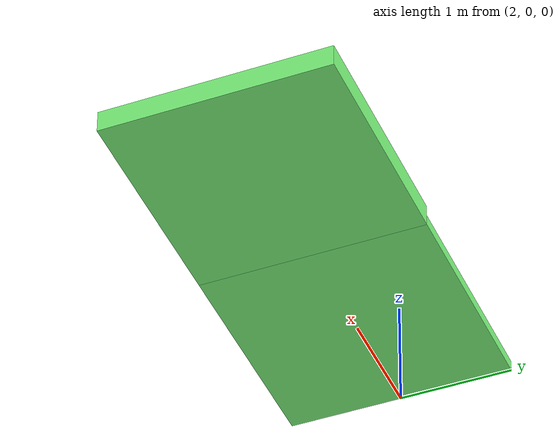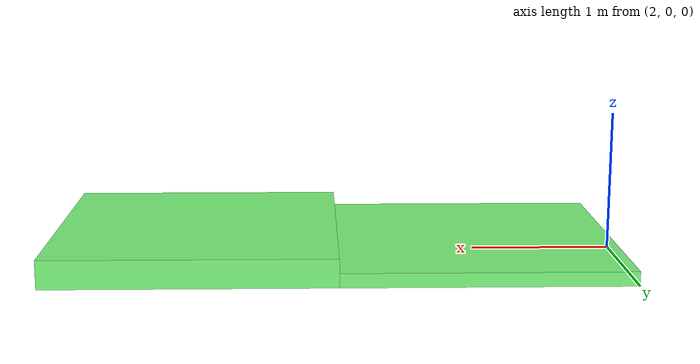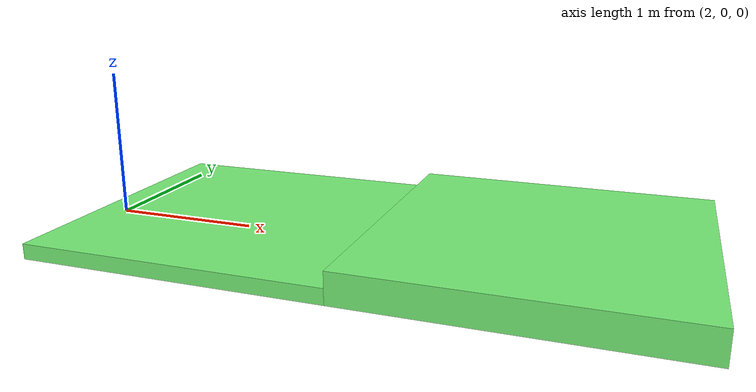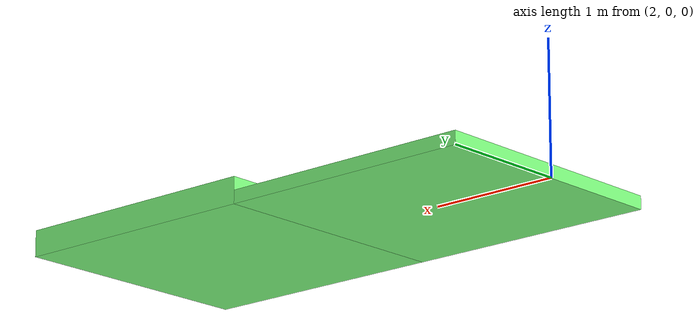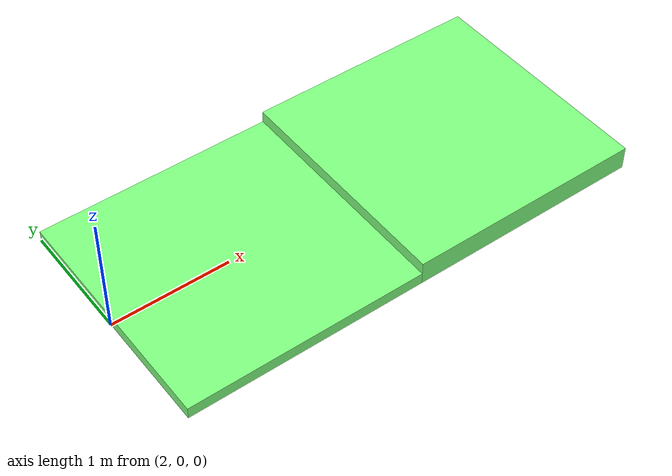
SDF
<sdf version='1.5'>
    <!-- Draw Circle -->
    <model name='ros_symbol'>
      <static>1</static>
      <link name='symbol'>
        <collision name='step_collision'>
            <pose>3 0 0.05 0 0 0</pose>
            <geometry>
                <box>
                    <size>2 2 0.1</size>
                </box>
            </geometry>
            <max_contacts>10</max_contacts>
            <surface>
                <bounce/>
                <friction>
                    <ode/>
                </friction>
                <contact>
                    <ode/>
                </contact>
            </surface>
        </collision>

        <visual name='step_visual'>
            <pose>3 0 0.05 0 0 0</pose>
            <geometry>
            <box>
                <size>2 2 0.1</size>
            </box>
            </geometry>
            <material>
                <ambient>0.5 1 0.5 1</ambient>
                <diffuse>0.5 1 0.5 1</diffuse>
                <specular>1 1 1 1</specular>
            </material>
         </visual>

        <collision name='step2_collision'>
            <pose>5 0 0.1 0 0 0</pose>
            <geometry>
                <box>
                    <size>2 2 0.2</size>
                </box>
            </geometry>
            <max_contacts>10</max_contacts>
            <surface>
                <bounce/>
                <friction>
                    <ode/>
                </friction>
                <contact>
                    <ode/>
                </contact>
            </surface>
        </collision>

        <visual name='step2_visual'>
            <pose>5 0 0.1 0 0 0</pose>
            <geometry>
            <box>
                <size>2 2 0.2</size>
            </box>
            </geometry>
            <material>
                <ambient>0.5 1 0.5 1</ambient>
                <diffuse>0.5 1 0.5 1</diffuse>
                <specular>1 1 1 1</specular>
            </material>
         </visual>
    </link>
  </model>
</sdf>
